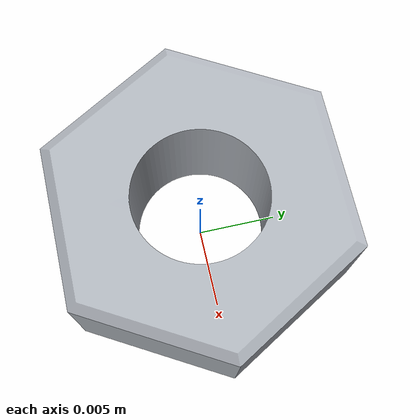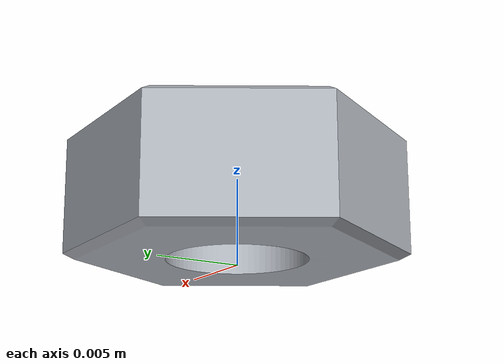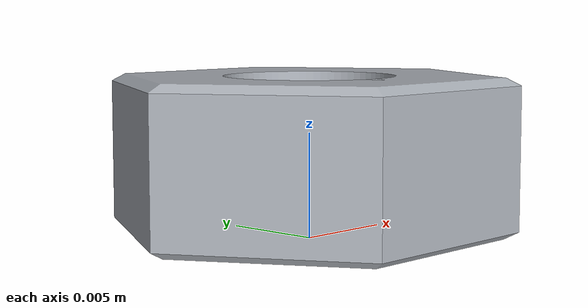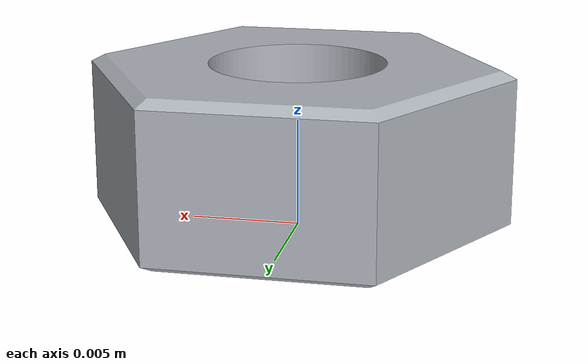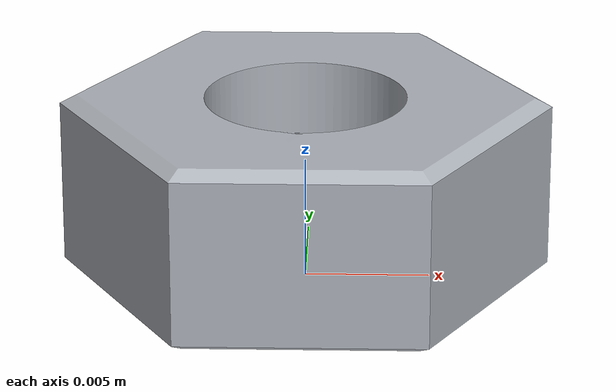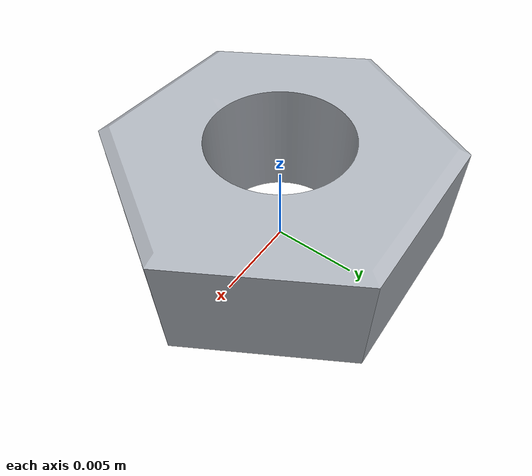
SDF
<?xml version="1.0"?>
<sdf version="1.6">
  <model name="m10_hex_nut">
    <static>false</static>
    <link name="link">
      <inertial>
        <pose>-4.90902755e-08 -1.50537393e-07 0.00399999893 0 0 0</pose>
        <mass>0.0114247716</mass>
        <inertia>
          <ixx>3.26999519e-07</ixx><ixy>-2.31322333e-12</ixy><ixz>3.03646231e-11</ixz>
          <iyy>3.2699297e-07</iyy><iyz>-9.89915851e-12</iyz><izz>5.51279197e-07</izz>
        </inertia>
      </inertial>
      <visual name="threaded_visual">
        <geometry><mesh><uri>model://m10_hex_nut/meshes/m10_hex_nut.stl</uri><scale>0.001 0.001 0.001</scale></mesh></geometry>
        <material>
          <ambient>0.42 0.43 0.45 1</ambient>
          <diffuse>0.68 0.70 0.73 1</diffuse>
          <specular>0.85 0.85 0.85 1</specular>
        </material>
      </visual>
      <collision name="nut_collision">
        <pose>0 0 0.004000 0 0 0</pose>
        <geometry><cylinder><radius>0.009815</radius><length>0.008000</length></cylinder></geometry>
        <surface><friction><ode><mu>0.8</mu><mu2>0.8</mu2></ode></friction></surface>
      </collision>
      <velocity_decay><linear>0.03</linear><angular>0.05</angular></velocity_decay>
    </link>
  </model>
</sdf>
